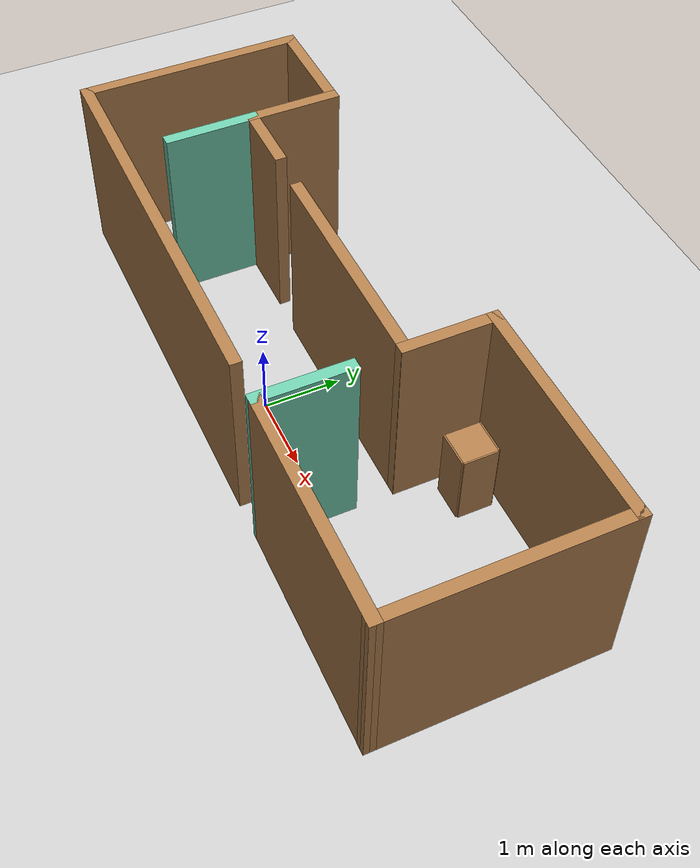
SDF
<sdf version="1.6">
 <world name="default">
  <light name="sun" type="directional">
   <pose>0 0 10 0 -0 0</pose>
   <diffuse>0.8 0.8 0.8 1</diffuse>
   <specular>0.2 0.2 0.2 1</specular>
   <attenuation>
    <range>1000</range>
    <constant>0.9</constant>
    <linear>0.01</linear>
    <quadratic>0.001</quadratic>
   </attenuation>
   <direction>-0.5 0.1 -0.9</direction>
  </light>
  <model name="ground_plane">
   <static>1</static>
   <link name="link">
    <collision name="collision">
     <geometry><plane><normal>0 0 1</normal><size>100 100</size></plane></geometry>
     <surface><friction><ode><mu>100</mu><mu2>50</mu2></ode></friction></surface>
    </collision>
    <visual name="visual">
     <cast_shadows>0</cast_shadows>
     <geometry><plane><normal>0 0 1</normal><size>100 100</size></plane></geometry>
     <material>
      <script><uri>file://media/materials/scripts/gazebo.material</uri><name>Gazebo/Grey</name></script>
     </material>
    </visual>
   </link>
  </model>
  <gravity>0 0 -9.8</gravity>
  <magnetic_field>6e-06 2.3e-05 -4.2e-05</magnetic_field>
  <atmosphere type="adiabatic"/>
  <physics name="default_physics" default="0" type="ode">
   <max_step_size>0.001</max_step_size>
   <real_time_factor>1</real_time_factor>
   <real_time_update_rate>1000</real_time_update_rate>
  </physics>
  <scene><ambient>0.4 0.4 0.4 1</ambient><background>0.7 0.7 0.7 1</background><shadows>1</shadows></scene>
  <spherical_coordinates>
   <surface_model>EARTH_WGS84</surface_model>
   <latitude_deg>0</latitude_deg>
   <longitude_deg>0</longitude_deg>
   <elevation>0</elevation>
   <heading_deg>0</heading_deg>
  </spherical_coordinates>
  <model name="whereamibuilding">
   <pose>0.411858 0.610496 0 0 -0 0</pose>
   <link name="Wall_0">
    <collision name="Wall_0_Collision">
     <geometry><box><size>3 0.15 2.5</size></box></geometry>
     <pose>0 0 1.25 0 -0 0</pose>
    </collision>
    <visual name="Wall_0_Visual">
     <pose>0 0 1.25 0 -0 0</pose>
     <geometry><box><size>3 0.15 2.5</size></box></geometry>
     <material>
      <script><uri>file://media/materials/scripts/gazebo.material</uri><name>Gazebo/Wood</name></script>
      <ambient>1 1 1 1</ambient>
     </material>
     <meta><layer>0</layer></meta>
    </visual>
    <pose>-4.27026 0.010262 0 0 -0 1.5708</pose>
   </link>
   <link name="Wall_1">
    <collision name="Wall_1_Collision">
     <geometry><box><size>1.5 0.15 2.5</size></box></geometry>
     <pose>0 0 1.25 0 -0 0</pose>
    </collision>
    <visual name="Wall_1_Visual">
     <pose>0 0 1.25 0 -0 0</pose>
     <geometry><box><size>1.5 0.15 2.5</size></box></geometry>
     <material>
      <script><uri>file://media/materials/scripts/gazebo.material</uri><name>Gazebo/Wood</name></script>
      <ambient>1 1 1 1</ambient>
     </material>
     <meta><layer>0</layer></meta>
    </visual>
    <pose>-3.59526 1.43526 0 0 -0 0</pose>
   </link>
   <link name="Wall_10">
    <collision name="Wall_10_Collision">
     <geometry><box><size>1.25 0.15 2.5</size></box></geometry>
     <pose>0 0 1.25 0 -0 0</pose>
    </collision>
    <visual name="Wall_10_Visual">
     <pose>0 0 1.25 0 -0 0</pose>
     <geometry><box><size>1.25 0.15 2.5</size></box></geometry>
     <material>
      <script><uri>file://media/materials/scripts/gazebo.material</uri><name>Gazebo/Grey</name></script>
      <ambient>0.435294 0.796078 0.67451 1</ambient>
     </material>
     <meta><layer>0</layer></meta>
    </visual>
    <pose>1.41974 -0.864738 0 0 -0 1.5708</pose>
   </link>
   <link name="Wall_12">
    <collision name="Wall_12_Collision">
     <geometry><box><size>5.25 0.15 2.5</size></box></geometry>
     <pose>0 0 1.25 0 -0 0</pose>
    </collision>
    <visual name="Wall_12_Visual">
     <pose>0 0 1.25 0 -0 0</pose>
     <geometry><box><size>5.25 0.15 2.5</size></box></geometry>
     <material>
      <script><uri>file://media/materials/scripts/gazebo.material</uri><name>Gazebo/Wood</name></script>
      <ambient>1 1 1 1</ambient>
     </material>
     <meta><layer>0</layer></meta>
    </visual>
    <pose>-1.72026 -1.41474 0 0 -0 0</pose>
   </link>
   <link name="Wall_14">
    <collision name="Wall_14_Collision">
     <geometry><box><size>3.00007 0.15 2.5</size></box></geometry>
     <pose>0 0 1.25 0 -0 0</pose>
    </collision>
    <visual name="Wall_14_Visual">
     <pose>0 0 1.25 0 -0 0</pose>
     <geometry><box><size>3.00007 0.15 2.5</size></box></geometry>
     <material>
      <script><uri>file://media/materials/scripts/gazebo.material</uri><name>Gazebo/Wood</name></script>
      <ambient>1 1 1 1</ambient>
     </material>
     <meta><layer>0</layer></meta>
    </visual>
    <pose>2.84474 -1.42474 0 0 0 -0.007017</pose>
   </link>
   <link name="Wall_17">
    <collision name="Wall_17_Collision">
     <geometry><box><size>1.25 0.15 2.5</size></box></geometry>
     <pose>0 0 1.25 0 -0 0</pose>
    </collision>
    <visual name="Wall_17_Visual">
     <pose>0 0 1.25 0 -0 0</pose>
     <geometry><box><size>1.25 0.15 2.5</size></box></geometry>
     <material>
      <script><uri>file://media/materials/scripts/gazebo.material</uri><name>Gazebo/Grey</name></script>
      <ambient>0.435294 0.796078 0.67451 1</ambient>
     </material>
     <meta><layer>0</layer></meta>
    </visual>
    <pose>-2.92026 -0.214738 0 0 0 -1.5708</pose>
   </link>
   <link name="Wall_2">
    <collision name="Wall_2_Collision">
     <geometry><box><size>1.25 0.15 2.5</size></box></geometry>
     <pose>0 0 1.25 0 -0 0</pose>
    </collision>
    <visual name="Wall_2_Visual">
     <pose>0 0 1.25 0 -0 0</pose>
     <geometry><box><size>1.25 0.15 2.5</size></box></geometry>
     <material>
      <script><uri>file://media/materials/scripts/gazebo.material</uri><name>Gazebo/Wood</name></script>
      <ambient>1 1 1 1</ambient>
     </material>
     <meta><layer>0</layer></meta>
    </visual>
    <pose>-2.92026 0.885262 0 0 0 -1.5708</pose>
   </link>
   <link name="Wall_3">
    <collision name="Wall_3_Collision">
     <geometry><box><size>1 0.15 2.5</size></box></geometry>
     <pose>0 0 1.25 0 -0 0</pose>
    </collision>
    <visual name="Wall_3_Visual">
     <pose>0 0 1.25 0 -0 0</pose>
     <geometry><box><size>1 0.15 2.5</size></box></geometry>
     <material>
      <script><uri>file://media/materials/scripts/gazebo.material</uri><name>Gazebo/Wood</name></script>
      <ambient>1 1 1 1</ambient>
     </material>
     <meta><layer>0</layer></meta>
    </visual>
    <pose>-2.49526 0.335262 0 0 -0 0</pose>
   </link>
   <link name="Wall_5">
    <collision name="Wall_5_Collision">
     <geometry><box><size>3 0.15 2.5</size></box></geometry>
     <pose>0 0 1.25 0 -0 0</pose>
    </collision>
    <visual name="Wall_5_Visual">
     <pose>0 0 1.25 0 -0 0</pose>
     <geometry><box><size>3 0.15 2.5</size></box></geometry>
     <material>
      <script><uri>file://media/materials/scripts/gazebo.material</uri><name>Gazebo/Wood</name></script>
      <ambient>1 1 1 1</ambient>
     </material>
     <meta><layer>0</layer></meta>
    </visual>
    <pose>-0.005262 0.315262 0 0 -0 0</pose>
   </link>
   <link name="Wall_6">
    <collision name="Wall_6_Collision">
     <geometry><box><size>1.25 0.15 2.5</size></box></geometry>
     <pose>0 0 1.25 0 -0 0</pose>
    </collision>
    <visual name="Wall_6_Visual">
     <pose>0 0 1.25 0 -0 0</pose>
     <geometry><box><size>1.25 0.15 2.5</size></box></geometry>
     <material>
      <script><uri>file://media/materials/scripts/gazebo.material</uri><name>Gazebo/Wood</name></script>
      <ambient>1 1 1 1</ambient>
     </material>
     <meta><layer>0</layer></meta>
    </visual>
    <pose>1.41974 0.865262 0 0 -0 1.5708</pose>
   </link>
   <link name="Wall_7">
    <collision name="Wall_7_Collision">
     <geometry><box><size>3 0.15 2.5</size></box></geometry>
     <pose>0 0 1.25 0 -0 0</pose>
    </collision>
    <visual name="Wall_7_Visual">
     <pose>0 0 1.25 0 -0 0</pose>
     <geometry><box><size>3 0.15 2.5</size></box></geometry>
     <material>
      <script><uri>file://media/materials/scripts/gazebo.material</uri><name>Gazebo/Wood</name></script>
      <ambient>1 1 1 1</ambient>
     </material>
     <meta><layer>0</layer></meta>
    </visual>
    <pose>2.84474 1.41526 0 0 -0 0</pose>
   </link>
   <link name="Wall_8">
    <collision name="Wall_8_Collision">
     <geometry><box><size>3 0.15 2.5</size></box></geometry>
     <pose>0 0 1.25 0 -0 0</pose>
    </collision>
    <visual name="Wall_8_Visual">
     <pose>0 0 1.25 0 -0 0</pose>
     <geometry><box><size>3 0.15 2.5</size></box></geometry>
     <material>
      <script><uri>file://media/materials/scripts/gazebo.material</uri><name>Gazebo/Wood</name></script>
      <ambient>1 1 1 1</ambient>
     </material>
     <meta><layer>0</layer></meta>
    </visual>
    <pose>4.26974 -0.009738 0 0 0 -1.5708</pose>
   </link>
   <static>1</static>
  </model>
  <model name="cabinet">
   <static>1</static>
   <link name="cabinet_bottom_plate">
    <inertial>
     <pose>0 0 -1 0 -0 0</pose>
     <inertia><ixx>2.05</ixx><ixy>0</ixy><ixz>0</ixz><iyy>2.05</iyy><iyz>0</iyz><izz>2.05</izz></inertia>
     <mass>25</mass>
    </inertial>
    <collision name="cabinet_bottom_plate_geom">
     <pose>0 0 0.01 0 -0 0</pose>
     <geometry><box><size>0.45 0.45 0.02</size></box></geometry>
    </collision>
    <visual name="cabinet_bottom_plate_geom_visual">
     <pose>0 0 0.01 0 -0 0</pose>
     <geometry><box><size>0.45 0.45 0.02</size></box></geometry>
     <material>
      <script><uri>file://media/materials/scripts/gazebo.material</uri><name>Gazebo/Wood</name></script>
     </material>
    </visual>
    <collision name="cabinet_bottom_plate_geom_cabinet_back_plate">
     <pose>0.235 0 0.51 0 -0 0</pose>
     <geometry><box><size>0.02 0.45 1.02</size></box></geometry>
    </collision>
    <visual name="cabinet_bottom_plate_geom_cabinet_back_plate_visual">
     <pose>0.235 0 0.51 0 -0 0</pose>
     <geometry><box><size>0.02 0.45 1.02</size></box></geometry>
     <material>
      <script><uri>file://media/materials/scripts/gazebo.material</uri><name>Gazebo/Wood</name></script>
     </material>
    </visual>
    <collision name="cabinet_bottom_plate_geom_cabinet_left_plate">
     <pose>0 0.235 0.51 0 -0 0</pose>
     <geometry><box><size>0.45 0.02 1.02</size></box></geometry>
    </collision>
    <visual name="cabinet_bottom_plate_geom_cabinet_left_plate_visual">
     <pose>0 0.235 0.51 0 -0 0</pose>
     <geometry><box><size>0.45 0.02 1.02</size></box></geometry>
     <material>
      <script><uri>file://media/materials/scripts/gazebo.material</uri><name>Gazebo/Wood</name></script>
     </material>
    </visual>
    <collision name="cabinet_bottom_plate_geom_cabinet_middle_plate">
     <pose>0 0 0.51 0 -0 0</pose>
     <geometry><box><size>0.45 0.45 0.02</size></box></geometry>
    </collision>
    <visual name="cabinet_bottom_plate_geom_cabinet_middle_plate_visual">
     <pose>0 0 0.51 0 -0 0</pose>
     <geometry><box><size>0.45 0.45 0.02</size></box></geometry>
     <material>
      <script><uri>file://media/materials/scripts/gazebo.material</uri><name>Gazebo/Wood</name></script>
     </material>
    </visual>
    <collision name="cabinet_bottom_plate_geom_cabinet_right_plate">
     <pose>0 -0.235 0.51 0 -0 0</pose>
     <geometry><box><size>0.45 0.02 1.02</size></box></geometry>
    </collision>
    <visual name="cabinet_bottom_plate_geom_cabinet_right_plate_visual">
     <pose>0 -0.235 0.51 0 -0 0</pose>
     <geometry><box><size>0.45 0.02 1.02</size></box></geometry>
     <material>
      <script><uri>file://media/materials/scripts/gazebo.material</uri><name>Gazebo/Wood</name></script>
     </material>
    </visual>
    <collision name="cabinet_bottom_plate_geom_cabinet_top_plate">
     <pose>0 0 1.01 0 -0 0</pose>
     <geometry><box><size>0.45 0.45 0.02</size></box></geometry>
    </collision>
    <visual name="cabinet_bottom_plate_geom_cabinet_top_plate_visual">
     <pose>0 0 1.01 0 -0 0</pose>
     <geometry><box><size>0.45 0.45 0.02</size></box></geometry>
     <material>
      <script><uri>file://media/materials/scripts/gazebo.material</uri><name>Gazebo/Wood</name></script>
     </material>
    </visual>
   </link>
   <pose>2.27905 1.62322 0 0 -0 0</pose>
  </model>
  <plugin filename="libcollision_map_creator.so" name="collision_map_creator"/>
 </world>
</sdf>
